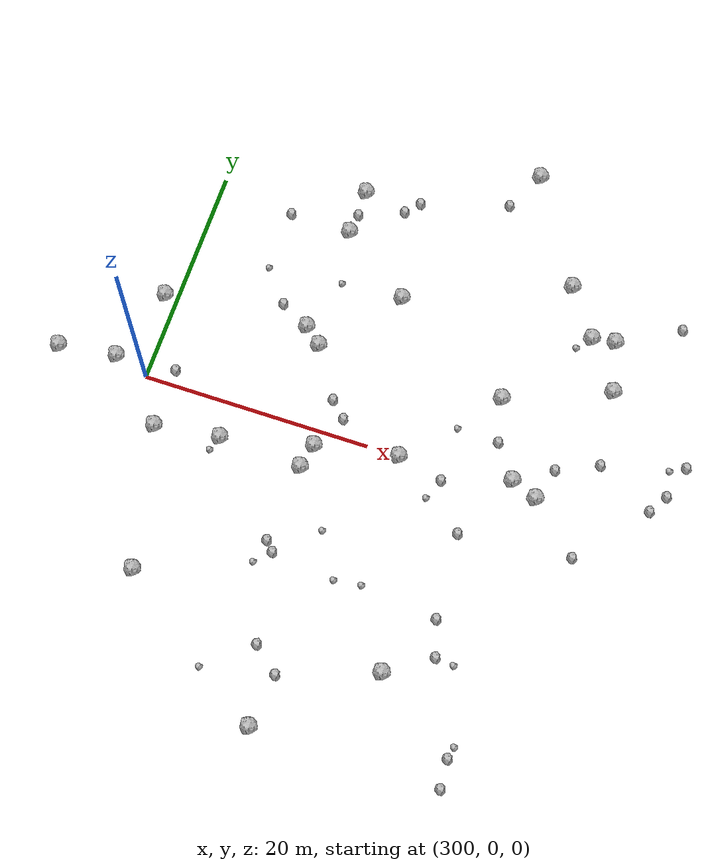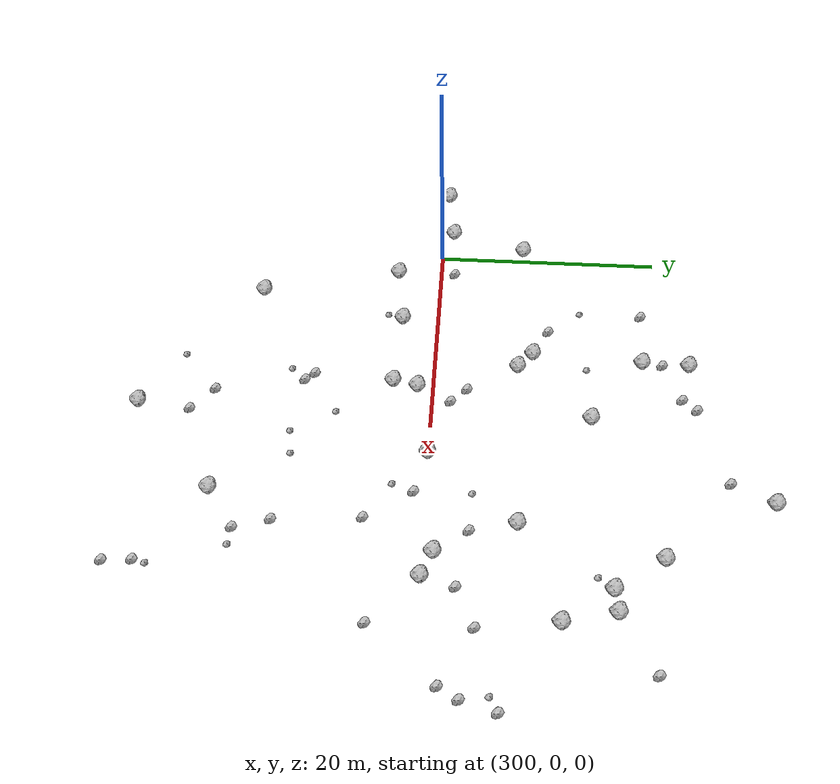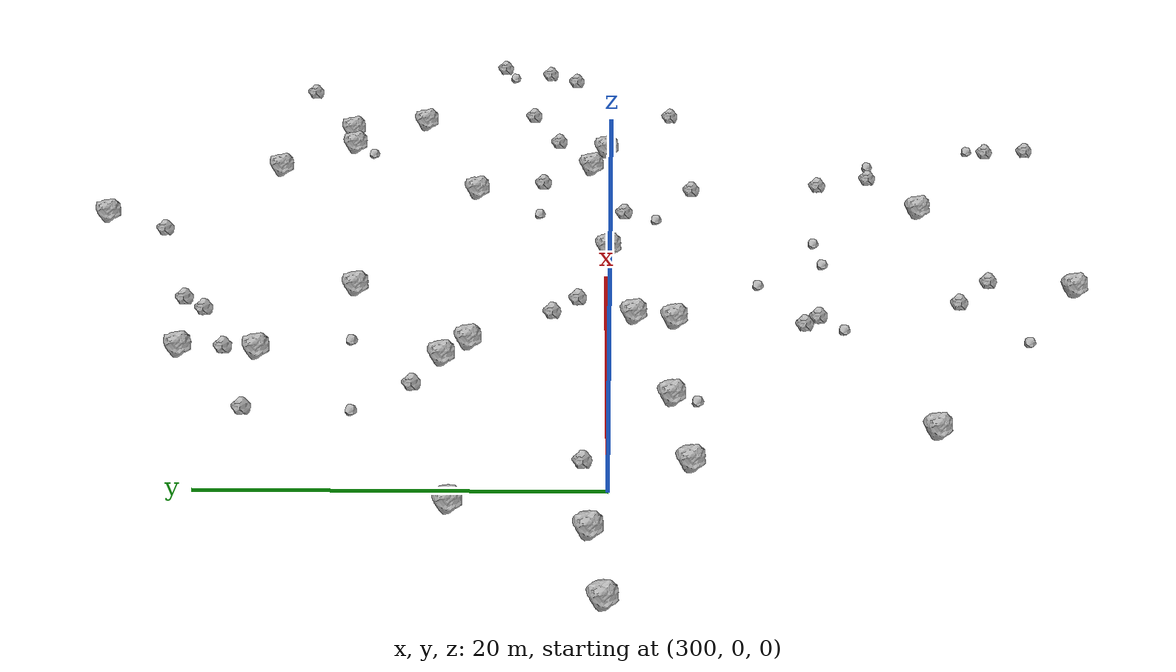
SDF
<sdf version="1.6">
 <world name="default">
  <include><uri>model://sun</uri></include>
  <model name="rock1_8_3">
   <include><uri>model://rock1</uri><pose>312.1252835839726 18.542542618948794 0.5 0 0 0</pose></include>
  </model>
  <model name="rock1_8_4">
   <include><uri>model://rock1</uri><pose>305.09859840820036 -16.415491346717722 0.5 0 0 0</pose></include>
  </model>
  <model name="rock1_8_5">
   <include><uri>model://rock1</uri><pose>291.848181195519 0.30777114956326557 0.5 0 0 0</pose></include>
  </model>
  <model name="rock1_8_6">
   <include><uri>model://rock1</uri><pose>315.25213869020473 -3.578378448663674 0.5 0 0 0</pose></include>
  </model>
  <model name="rock1_8_7">
   <include><uri>model://rock1</uri><pose>326.54126238874557 29.088529052214405 0.5 0 0 0</pose></include>
  </model>
  <model name="rock1_8_8">
   <include><uri>model://rock1</uri><pose>302.26494070259366 -4.005235346728146 0.5 0 0 0</pose></include>
  </model>
  <model name="rock1_8_9">
   <include><uri>model://rock1</uri><pose>335.243282689256 15.49409463303332 0.5 0 0 0</pose></include>
  </model>
  <model name="rock1_8_10">
   <include><uri>model://rock1</uri><pose>337.25985113794866 15.7848849342692 0.5 0 0 0</pose></include>
  </model>
  <model name="rock1_8_11">
   <include><uri>model://rock1</uri><pose>332.5347735482401 0.9242117126226432 0.5 0 0 0</pose></include>
  </model>
  <model name="rock1_8_12">
   <include><uri>model://rock1</uri><pose>312.27277579143106 22.697618207953603 0.5 0 0 0</pose></include>
  </model>
  <model name="rock1_8_13">
   <include><uri>model://rock1</uri><pose>332.28241427476235 19.67531326781645 0.5 0 0 0</pose></include>
  </model>
  <model name="rock1_8_14">
   <include><uri>model://rock1</uri><pose>327.3419082702459 -18.151133403923794 0.5 0 0 0</pose></include>
  </model>
  <model name="rock1_8_15">
   <include><uri>model://rock1</uri><pose>315.721946540733 -1.4001387230475828 0.5 0 0 0</pose></include>
  </model>
  <model name="rock1_8_16">
   <include><uri>model://rock1</uri><pose>307.93616680364664 -3.237972986132174 0.5 0 0 0</pose></include>
  </model>
  <model name="rock1_8_17">
   <include><uri>model://rock1</uri><pose>329.51843113035994 7.7045599431745515 0.5 0 0 0</pose></include>
  </model>
  <model name="rock1_8_18">
   <include><uri>model://rock1</uri><pose>318.6432334784436 -25.721126594561348 0.5 0 0 0</pose></include>
  </model>
  <model name="rock1_8_19">
   <include><uri>model://rock1</uri><pose>296.9090363038885 0.9774105072385737 0.5 0 0 0</pose></include>
  </model>
  <model name="rock1_8_20">
   <include><uri>model://rock1</uri><pose>322.8216933309776 -0.05812397113692924 0.5 0 0 0</pose></include>
  </model>
  <model name="rock1_8_21">
   <include><uri>model://rock1</uri><pose>298.87338424125807 7.682358694554168 0.5 0 0 0</pose></include>
  </model>
  <model name="rock1_8_22">
   <include><uri>model://rock1</uri><pose>338.350823852816 11.299689462003641 0.5 0 0 0</pose></include>
  </model>
  <model name="rock1_8_23">
   <include><uri>model://rock1</uri><pose>311.546978419806 8.740813435975546 0.5 0 0 0</pose></include>
  </model>
  <model name="rock1_8_24">
   <include><uri>model://rock1</uri><pose>318.51470539498223 13.912674251140814 0.5 0 0 0</pose></include>
  </model>
  <model name="rock1_8_25">
   <include><uri>model://rock1</uri><pose>334.8216005446202 0.013571984409161075 0.5 0 0 0</pose></include>
  </model>
  <model name="rock1_8_26">
   <include><uri>model://rock1</uri><pose>313.09852190005626 7.419226721389535 0.5 0 0 0</pose></include>
  </model>
  <model name="rock2_8_0">
   <include><uri>model://rock2</uri><pose>329.5842331975433 -4.997152836060323 0.3 0 0 0</pose></include>
  </model>
  <model name="rock2_8_1">
   <include><uri>model://rock2</uri><pose>308.917182512529 10.122086547600063 0.3 0 0 0</pose></include>
  </model>
  <model name="rock2_8_2">
   <include><uri>model://rock2</uri><pose>330.14957595441604 -12.531859074603066 0.3 0 0 0</pose></include>
  </model>
  <model name="rock2_8_3">
   <include><uri>model://rock2</uri><pose>317.2052317354804 23.163510271632873 0.3 0 0 0</pose></include>
  </model>
  <model name="rock2_8_4">
   <include><uri>model://rock2</uri><pose>315.90302958346535 3.014305990395343 0.3 0 0 0</pose></include>
  </model>
  <model name="rock2_8_5">
   <include><uri>model://rock2</uri><pose>324.7569718030162 25.48857788328297 0.3 0 0 0</pose></include>
  </model>
  <model name="rock2_8_6">
   <include><uri>model://rock2</uri><pose>326.8445340870434 -0.9867181979697683 0.3 0 0 0</pose></include>
  </model>
  <model name="rock2_8_7">
   <include><uri>model://rock2</uri><pose>312.3324026080899 20.346830257720548 0.3 0 0 0</pose></include>
  </model>
  <model name="rock2_8_8">
   <include><uri>model://rock2</uri><pose>315.51974768930376 -11.386521692440297 0.3 0 0 0</pose></include>
  </model>
  <model name="rock2_8_9">
   <include><uri>model://rock2</uri><pose>342.480294047558 18.745344194092425 0.3 0 0 0</pose></include>
  </model>
  <model name="rock2_8_10">
   <include><uri>model://rock2</uri><pose>306.6846994002742 18.583532527517704 0.3 0 0 0</pose></include>
  </model>
  <model name="rock2_8_11">
   <include><uri>model://rock2</uri><pose>334.6986859095796 -25.62542055727406 0.3 0 0 0</pose></include>
  </model>
  <model name="rock2_8_12">
   <include><uri>model://rock2</uri><pose>331.07107611980666 -15.612242564384491 0.3 0 0 0</pose></include>
  </model>
  <model name="rock2_8_13">
   <include><uri>model://rock2</uri><pose>330.4124720297438 3.791652568202629 0.3 0 0 0</pose></include>
  </model>
  <model name="rock2_8_14">
   <include><uri>model://rock2</uri><pose>317.3025917047918 1.6276185151338431 0.3 0 0 0</pose></include>
  </model>
  <model name="rock2_8_15">
   <include><uri>model://rock2</uri><pose>339.17962182721226 -3.992531537655722 0.3 0 0 0</pose></include>
  </model>
  <model name="rock2_8_16">
   <include><uri>model://rock2</uri><pose>319.2086856832294 -21.074663754193498 0.3 0 0 0</pose></include>
  </model>
  <model name="rock2_8_17">
   <include><uri>model://rock2</uri><pose>316.12614233850127 21.927411459410727 0.3 0 0 0</pose></include>
  </model>
  <model name="rock2_8_18">
   <include><uri>model://rock2</uri><pose>334.50677230252603 -23.149125358299397 0.3 0 0 0</pose></include>
  </model>
  <model name="rock2_8_19">
   <include><uri>model://rock2</uri><pose>345.1928880287071 3.617551076349436 0.3 0 0 0</pose></include>
  </model>
  <model name="rock2_8_20">
   <include><uri>model://rock2</uri><pose>339.17301112079434 4.559145186085402 0.3 0 0 0</pose></include>
  </model>
  <model name="rock2_8_21">
   <include><uri>model://rock2</uri><pose>346.09494598883583 6.598965404547137 0.3 0 0 0</pose></include>
  </model>
  <model name="rock2_8_22">
   <include><uri>model://rock2</uri><pose>314.7564203424869 -10.568923407895735 0.3 0 0 0</pose></include>
  </model>
  <model name="rock2_8_23">
   <include><uri>model://rock2</uri><pose>316.95060945057617 -19.157691233193425 0.3 0 0 0</pose></include>
  </model>
  <model name="rock2_8_24">
   <include><uri>model://rock2</uri><pose>302.2267101252206 1.2879092746920193 0.3 0 0 0</pose></include>
  </model>
  <model name="rock2_8_25">
   <include><uri>model://rock2</uri><pose>335.66729266663316 2.919655125520606 0.3 0 0 0</pose></include>
  </model>
  <model name="rock2_8_26">
   <include><uri>model://rock2</uri><pose>344.1853335206225 1.9177273385044344 0.3 0 0 0</pose></include>
  </model>
  <model name="rock3_8_0">
   <include><uri>model://rock3</uri><pose>332.6536706449246 -15.789651772630247 0.2 0 0 0</pose></include>
  </model>
  <model name="rock3_8_1">
   <include><uri>model://rock3</uri><pose>326.7566932922415 3.894792790751758 0.2 0 0 0</pose></include>
  </model>
  <model name="rock3_8_2">
   <include><uri>model://rock3</uri><pose>334.7187302298188 -22.1167135084873 0.2 0 0 0</pose></include>
  </model>
  <model name="rock3_8_3">
   <include><uri>model://rock3</uri><pose>321.08167923898463 -12.082556588612068 0.2 0 0 0</pose></include>
  </model>
  <model name="rock3_8_4">
   <include><uri>model://rock3</uri><pose>313.1254790381028 -22.411451933384512 0.2 0 0 0</pose></include>
  </model>
  <model name="rock3_8_5">
   <include><uri>model://rock3</uri><pose>326.1085374115297 -2.870818567206168 0.2 0 0 0</pose></include>
  </model>
  <model name="rock3_8_6">
   <include><uri>model://rock3</uri><pose>313.08144783218495 13.579772237499839 0.2 0 0 0</pose></include>
  </model>
  <model name="rock3_8_7">
   <include><uri>model://rock3</uri><pose>334.1883428463157 14.224865348908196 0.2 0 0 0</pose></include>
  </model>
  <model name="rock3_8_8">
   <include><uri>model://rock3</uri><pose>344.800146607649 5.883058488973447 0.2 0 0 0</pose></include>
  </model>
  <model name="rock3_8_9">
   <include><uri>model://rock3</uri><pose>306.53954028991586 12.99556230145037 0.2 0 0 0</pose></include>
  </model>
  <model name="rock3_8_10">
   <include><uri>model://rock3</uri><pose>323.4180315754467 -11.769917827173966 0.2 0 0 0</pose></include>
  </model>
  <model name="rock3_8_11">
   <include><uri>model://rock3</uri><pose>314.26895528968913 -12.691430673517068 0.2 0 0 0</pose></include>
  </model>
  <model name="rock3_8_12">
   <include><uri>model://rock3</uri><pose>318.82254360248385 -8.335847027306194 0.2 0 0 0</pose></include>
  </model>
  <model name="rock3_8_13">
   <include><uri>model://rock3</uri><pose>307.4605115406229 -4.577750465998541 0.2 0 0 0</pose></include>
  </model>
 </world>
</sdf>
